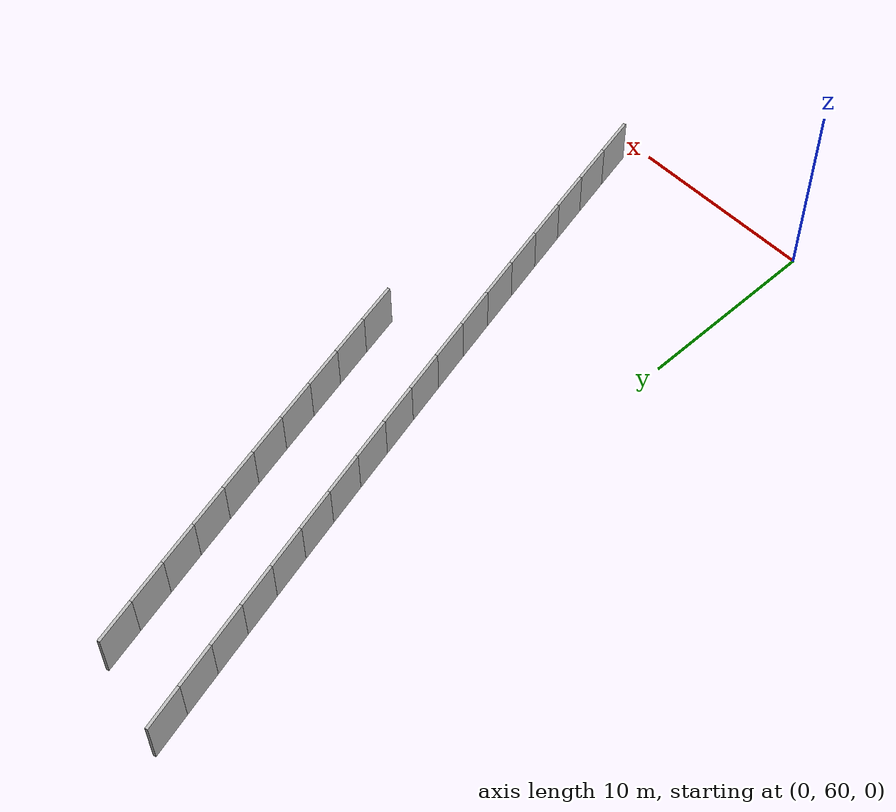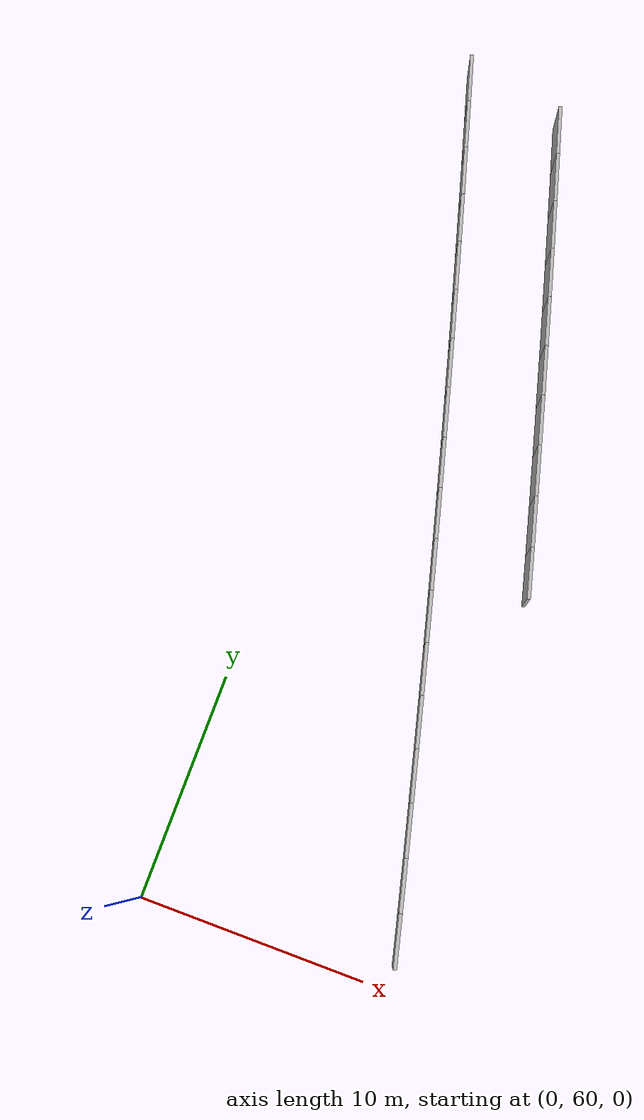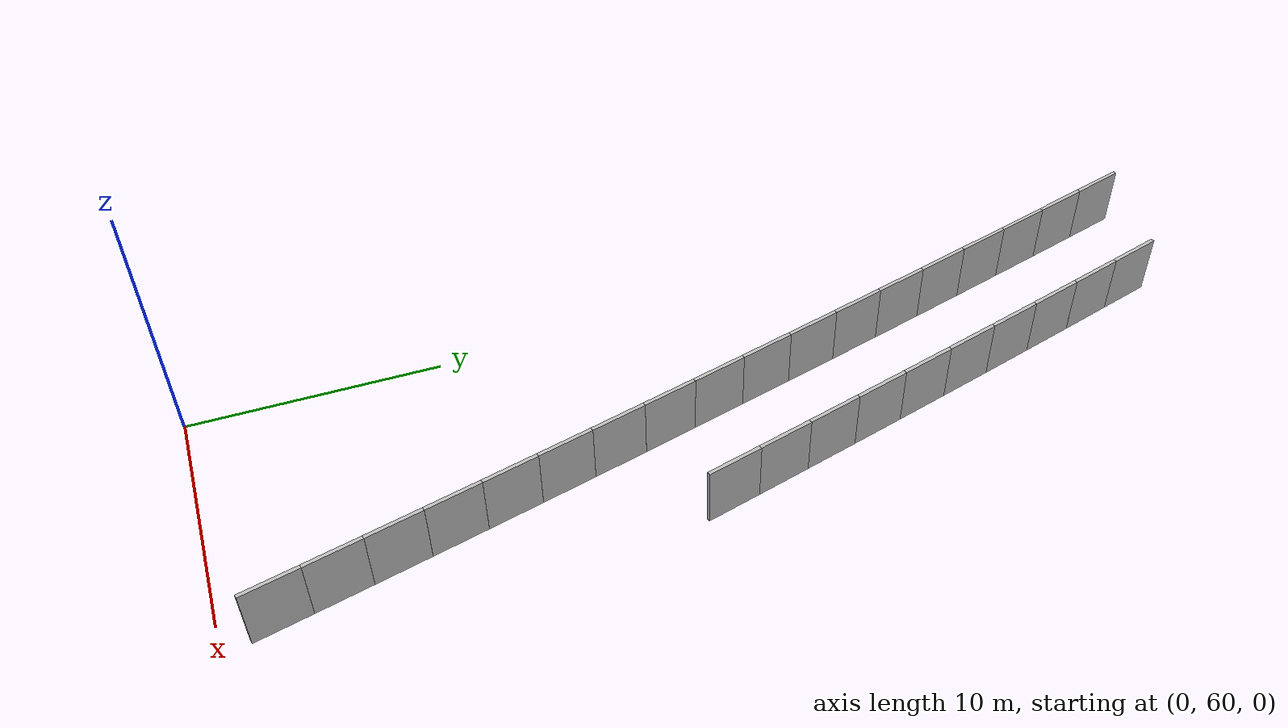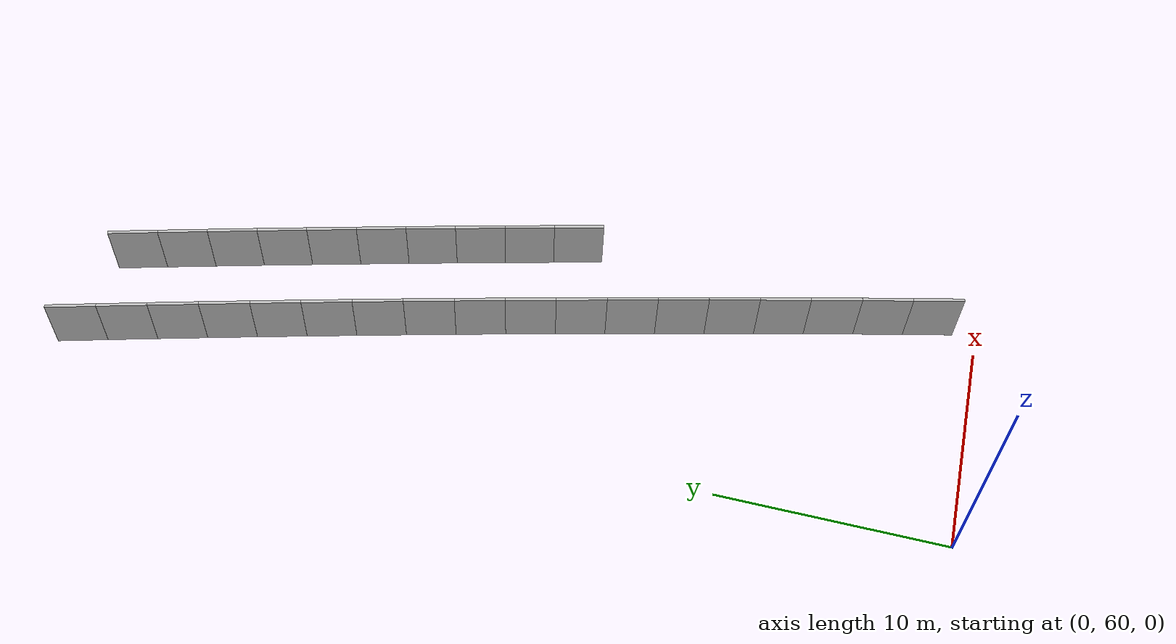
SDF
<sdf version="1.6">
 <model name="sps_2314">
  <static>1</static>
  <allow_auto_disable>0</allow_auto_disable>
  <link name="Wall4696">
   <collision name="collision"><geometry><box><size>2.25448 0.15 2.5</size></box></geometry></collision>
   <visual name="visual">
    <geometry><box><size>2.25448 0.15 2.5</size></box></geometry>
    <transparency>0.0</transparency>
   </visual>
   <pose>10.8498 78.4412 1.25 0 -0 1.82962</pose>
  </link>
  <link name="Wall4697">
   <collision name="collision"><geometry><box><size>2.25455 0.15 2.5</size></box></geometry></collision>
   <visual name="visual">
    <geometry><box><size>2.25455 0.15 2.5</size></box></geometry>
    <transparency>0.0</transparency>
   </visual>
   <pose>10.27 80.6199 1.25 0 -0 1.83216</pose>
  </link>
  <link name="Wall4698">
   <collision name="collision"><geometry><box><size>2.25432 0.15 2.5</size></box></geometry></collision>
   <visual name="visual">
    <geometry><box><size>2.25432 0.15 2.5</size></box></geometry>
    <transparency>0.0</transparency>
   </visual>
   <pose>9.68487 82.7971 1.25 0 -0 1.83449</pose>
  </link>
  <link name="Wall4699">
   <collision name="collision"><geometry><box><size>2.25468 0.15 2.5</size></box></geometry></collision>
   <visual name="visual">
    <geometry><box><size>2.25468 0.15 2.5</size></box></geometry>
    <transparency>0.0</transparency>
   </visual>
   <pose>9.09478 84.973 1.25 0 -0 1.83675</pose>
  </link>
  <link name="Wall4700">
   <collision name="collision"><geometry><box><size>2.25454 0.15 2.5</size></box></geometry></collision>
   <visual name="visual">
    <geometry><box><size>2.25454 0.15 2.5</size></box></geometry>
    <transparency>0.0</transparency>
   </visual>
   <pose>8.49956 87.1476 1.25 0 -0 1.83918</pose>
  </link>
  <link name="Wall4701">
   <collision name="collision"><geometry><box><size>2.25449 0.15 2.5</size></box></geometry></collision>
   <visual name="visual">
    <geometry><box><size>2.25449 0.15 2.5</size></box></geometry>
    <transparency>0.0</transparency>
   </visual>
   <pose>7.89916 89.3207 1.25 0 -0 1.84154</pose>
  </link>
  <link name="Wall4702">
   <collision name="collision"><geometry><box><size>2.25469 0.15 2.5</size></box></geometry></collision>
   <visual name="visual">
    <geometry><box><size>2.25469 0.15 2.5</size></box></geometry>
    <transparency>0.0</transparency>
   </visual>
   <pose>7.29375 91.4925 1.25 0 -0 1.84377</pose>
  </link>
  <link name="Wall4703">
   <collision name="collision"><geometry><box><size>2.25477 0.15 2.5</size></box></geometry></collision>
   <visual name="visual">
    <geometry><box><size>2.25477 0.15 2.5</size></box></geometry>
    <transparency>0.0</transparency>
   </visual>
   <pose>6.68325 93.663 1.25 0 -0 1.8462</pose>
  </link>
  <link name="Wall4704">
   <collision name="collision"><geometry><box><size>2.2545 0.15 2.5</size></box></geometry></collision>
   <visual name="visual">
    <geometry><box><size>2.2545 0.15 2.5</size></box></geometry>
    <transparency>0.0</transparency>
   </visual>
   <pose>6.06747 95.8319 1.25 0 -0 1.84866</pose>
  </link>
  <link name="Wall4705">
   <collision name="collision"><geometry><box><size>2.25471 0.15 2.5</size></box></geometry></collision>
   <visual name="visual">
    <geometry><box><size>2.25471 0.15 2.5</size></box></geometry>
    <transparency>0.0</transparency>
   </visual>
   <pose>5.44656 97.9993 1.25 0 -0 1.85094</pose>
  </link>
  <link name="Wall6414">
   <collision name="collision"><geometry><box><size>2.24496 0.15 2.5</size></box></geometry></collision>
   <visual name="visual">
    <geometry><box><size>2.24496 0.15 2.5</size></box></geometry>
    <transparency>0.0</transparency>
   </visual>
   <pose>10.7435 62.1584 1.25 0 -0 1.81298</pose>
  </link>
  <link name="Wall6415">
   <collision name="collision"><geometry><box><size>2.24467 0.15 2.5</size></box></geometry></collision>
   <visual name="visual">
    <geometry><box><size>2.24467 0.15 2.5</size></box></geometry>
    <transparency>0.0</transparency>
   </visual>
   <pose>10.2024 64.337 1.25 0 -0 1.8155</pose>
  </link>
  <link name="Wall6416">
   <collision name="collision"><geometry><box><size>2.24482 0.15 2.5</size></box></geometry></collision>
   <visual name="visual">
    <geometry><box><size>2.24482 0.15 2.5</size></box></geometry>
    <transparency>0.0</transparency>
   </visual>
   <pose>9.65615 66.5143 1.25 0 -0 1.81767</pose>
  </link>
  <link name="Wall6417">
   <collision name="collision"><geometry><box><size>2.24485 0.15 2.5</size></box></geometry></collision>
   <visual name="visual">
    <geometry><box><size>2.24485 0.15 2.5</size></box></geometry>
    <transparency>0.0</transparency>
   </visual>
   <pose>9.10485 68.6904 1.25 0 -0 1.82017</pose>
  </link>
  <link name="Wall6418">
   <collision name="collision"><geometry><box><size>2.24467 0.15 2.5</size></box></geometry></collision>
   <visual name="visual">
    <geometry><box><size>2.24467 0.15 2.5</size></box></geometry>
    <transparency>0.0</transparency>
   </visual>
   <pose>8.54845 70.8651 1.25 0 -0 1.82238</pose>
  </link>
  <link name="Wall6419">
   <collision name="collision"><geometry><box><size>2.24485 0.15 2.5</size></box></geometry></collision>
   <visual name="visual">
    <geometry><box><size>2.24485 0.15 2.5</size></box></geometry>
    <transparency>0.0</transparency>
   </visual>
   <pose>7.98696 73.0385 1.25 0 -0 1.82486</pose>
  </link>
  <link name="Wall6420">
   <collision name="collision"><geometry><box><size>2.2448 0.15 2.5</size></box></geometry></collision>
   <visual name="visual">
    <geometry><box><size>2.2448 0.15 2.5</size></box></geometry>
    <transparency>0.0</transparency>
   </visual>
   <pose>7.42016 75.2106 1.25 0 -0 1.82725</pose>
  </link>
  <link name="Wall6421">
   <collision name="collision"><geometry><box><size>2.24459 0.15 2.5</size></box></geometry></collision>
   <visual name="visual">
    <geometry><box><size>2.24459 0.15 2.5</size></box></geometry>
    <transparency>0.0</transparency>
   </visual>
   <pose>6.84817 77.3812 1.25 0 -0 1.82966</pose>
  </link>
  <link name="Wall6422">
   <collision name="collision"><geometry><box><size>2.24493 0.15 2.5</size></box></geometry></collision>
   <visual name="visual">
    <geometry><box><size>2.24493 0.15 2.5</size></box></geometry>
    <transparency>0.0</transparency>
   </visual>
   <pose>6.27108 79.5505 1.25 0 -0 1.83193</pose>
  </link>
  <link name="Wall6423">
   <collision name="collision"><geometry><box><size>2.24416 0.15 2.5</size></box></geometry></collision>
   <visual name="visual">
    <geometry><box><size>2.24416 0.15 2.5</size></box></geometry>
    <transparency>0.0</transparency>
   </visual>
   <pose>5.68877 81.7182 1.25 0 -0 1.83453</pose>
  </link>
  <link name="Wall6424">
   <collision name="collision"><geometry><box><size>2.24481 0.15 2.5</size></box></geometry></collision>
   <visual name="visual">
    <geometry><box><size>2.24481 0.15 2.5</size></box></geometry>
    <transparency>0.0</transparency>
   </visual>
   <pose>5.10116 83.8844 1.25 0 -0 1.83685</pose>
  </link>
  <link name="Wall6425">
   <collision name="collision"><geometry><box><size>2.24496 0.15 2.5</size></box></geometry></collision>
   <visual name="visual">
    <geometry><box><size>2.24496 0.15 2.5</size></box></geometry>
    <transparency>0.0</transparency>
   </visual>
   <pose>4.50845 86.0496 1.25 0 -0 1.83914</pose>
  </link>
  <link name="Wall6426">
   <collision name="collision"><geometry><box><size>2.24468 0.15 2.5</size></box></geometry></collision>
   <visual name="visual">
    <geometry><box><size>2.24468 0.15 2.5</size></box></geometry>
    <transparency>0.0</transparency>
   </visual>
   <pose>3.91076 88.2134 1.25 0 -0 1.84146</pose>
  </link>
  <link name="Wall6427">
   <collision name="collision"><geometry><box><size>2.24498 0.15 2.5</size></box></geometry></collision>
   <visual name="visual">
    <geometry><box><size>2.24498 0.15 2.5</size></box></geometry>
    <transparency>0.0</transparency>
   </visual>
   <pose>3.30798 90.3758 1.25 0 -0 1.84385</pose>
  </link>
  <link name="Wall6428">
   <collision name="collision"><geometry><box><size>2.24463 0.15 2.5</size></box></geometry></collision>
   <visual name="visual">
    <geometry><box><size>2.24463 0.15 2.5</size></box></geometry>
    <transparency>0.0</transparency>
   </visual>
   <pose>2.70006 92.5367 1.25 0 -0 1.84621</pose>
  </link>
  <link name="Wall6429">
   <collision name="collision"><geometry><box><size>2.24469 0.15 2.5</size></box></geometry></collision>
   <visual name="visual">
    <geometry><box><size>2.24469 0.15 2.5</size></box></geometry>
    <transparency>0.0</transparency>
   </visual>
   <pose>2.08697 94.696 1.25 0 -0 1.84869</pose>
  </link>
  <link name="Wall6430">
   <collision name="collision"><geometry><box><size>2.24479 0.15 2.5</size></box></geometry></collision>
   <visual name="visual">
    <geometry><box><size>2.24479 0.15 2.5</size></box></geometry>
    <transparency>0.0</transparency>
   </visual>
   <pose>1.46865 96.8539 1.25 0 -0 1.85102</pose>
  </link>
  <link name="Wall6431">
   <collision name="collision"><geometry><box><size>2.24476 0.15 2.5</size></box></geometry></collision>
   <visual name="visual">
    <geometry><box><size>2.24476 0.15 2.5</size></box></geometry>
    <transparency>0.0</transparency>
   </visual>
   <pose>0.845329 99.0104 1.25 0 -0 1.85332</pose>
  </link>
 </model>
</sdf>
